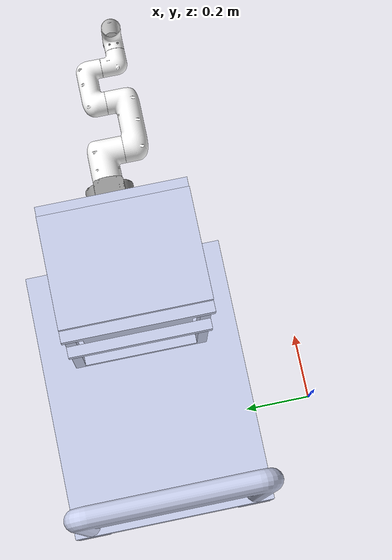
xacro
<?xml version='1.0' encoding='utf-8'?>
<robot xmlns:xacro="http://ros.org/wiki/xacro" name="toilet_trolley_arm_description">

    <xacro:macro name="toilet_trolley_arm_macro">
    <xacro:arg name="ros_namespace" default="toilet_trolley_arm_description"/>

    <!-- load trolley -->
    <xacro:include filename="$(find trolley_urdf)/urdf/trolley_urdf_7.xacro" />

    <!-- load mycobot_pro_320 -->
    <xacro:include filename="$(find mycobot_pro)/urdf/mycobot_robot_macro.xacro" />

    <xacro:mycobot_pro_robot_macro attach_to="box_link" xyz="0.3 0.15 0.15" rpy="0 1.5707 0"/>
    </xacro:macro>

    <xacro:toilet_trolley_arm_macro/>

</robot>

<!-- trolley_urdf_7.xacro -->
<robot
  xmlns:xacro="http://ros.org/wiki/xacro"
  name="trolley_urdf">
  <xacro:macro name="trolley_urdf_macro">
  <link
    name="trolley_base">
    <inertial>
      <origin
        xyz="0.10272 0.49366 0.2"
        rpy="0 0 0" />
      <mass
        value="48" />
      <inertia
        ixx="1.48"
        ixy="2.3463E-16"
        ixz="-9.3648E-33"
        iyy="2.6"
        iyz="1.1449E-17"
        izz="4" />
    </inertial>
    <visual>
      <origin
        xyz="0 0 0"
        rpy="0 0 0" />
      <geometry>
        <mesh
          filename="package://trolley_urdf/meshes/base_link.STL" />
      </geometry>
      <material
        name="">
        <color
          rgba="0.79216 0.81961 0.93333 1" />
      </material>
    </visual>
    <collision>
      <origin
        xyz="0 0 0"
        rpy="0 0 0" />
      <geometry>
        <mesh
          filename="package://trolley_urdf/meshes/base_link.STL" />
      </geometry>
    </collision>
  </link>
  <link
    name="wheel_1">
    <inertial>
      <origin
        xyz="-2.7756E-17 0.05 0"
        rpy="0 0 0" />
      <mass
        value="1.7671" />
      <inertia
        ixx="0.0039577"
        ixy="5.6646E-20"
        ixz="-6.4939E-20"
        iyy="0.0049701"
        iyz="5.8958E-20"
        izz="0.0039577" />
    </inertial>
    <visual>
      <origin
        xyz="0 0 0"
        rpy="0 0 0" />
      <geometry>
        <mesh
          filename="package://trolley_urdf/meshes/wheel_1.STL" />
      </geometry>
      <material
        name="">
        <color
          rgba="0.79216 0.81961 0.93333 1" />
      </material>
    </visual>
    <collision>
      <origin
        xyz="0 0 0"
        rpy="0 0 0" />
      <geometry>
        <mesh
          filename="package://trolley_urdf/meshes/wheel_1.STL" />
      </geometry>
    </collision>
  </link>
  <joint
    name="wheel_1_joint"
    type="continuous">
    <origin
      xyz="-0.22228 0.69366 0.075"
      rpy="0 0 0" />
    <parent
      link="trolley_base" />
    <child
      link="wheel_1" />
    <axis
      xyz="0 1 0" />
  </joint>
  <link
    name="wheel_2">
    <inertial>
      <origin
        xyz="0 0.05 0"
        rpy="0 0 0" />
      <mass
        value="1.7671" />
      <inertia
        ixx="0.0039577"
        ixy="-3.3704E-20"
        ixz="-2.2588E-20"
        iyy="0.0049701"
        iyz="1.0413E-19"
        izz="0.0039577" />
    </inertial>
    <visual>
      <origin
        xyz="0 0 0"
        rpy="0 0 0" />
      <geometry>
        <mesh
          filename="package://trolley_urdf/meshes/wheel_2.STL" />
      </geometry>
      <material
        name="">
        <color
          rgba="0.79216 0.81961 0.93333 1" />
      </material>
    </visual>
    <collision>
      <origin
        xyz="0 0 0"
        rpy="0 0 0" />
      <geometry>
        <mesh
          filename="package://trolley_urdf/meshes/wheel_2.STL" />
      </geometry>
    </collision>
  </link>
  <joint
    name="wheel_2_joint"
    type="continuous">
    <origin
      xyz="-0.22228 0.19366 0.075"
      rpy="0 0 0" />
    <parent
      link="trolley_base" />
    <child
      link="wheel_2" />
    <axis
      xyz="0 1 0" />
  </joint>
  <link
    name="wheel_3">
    <inertial>
      <origin
        xyz="-5.5511E-17 0.05 0"
        rpy="0 0 0" />
      <mass
        value="1.7671" />
      <inertia
        ixx="0.0039577"
        ixy="-2.8731E-19"
        ixz="-2.5129E-19"
        iyy="0.0049701"
        iyz="-6.1343E-20"
        izz="0.0039577" />
    </inertial>
    <visual>
      <origin
        xyz="0 0 0"
        rpy="0 0 0" />
      <geometry>
        <mesh
          filename="package://trolley_urdf/meshes/wheel_3.STL" />
      </geometry>
      <material
        name="">
        <color
          rgba="0.79216 0.81961 0.93333 1" />
      </material>
    </visual>
    <collision>
      <origin
        xyz="0 0 0"
        rpy="0 0 0" />
      <geometry>
        <mesh
          filename="package://trolley_urdf/meshes/wheel_3.STL" />
      </geometry>
    </collision>
  </link>
  <joint
    name="wheel_3_joint"
    type="continuous">
    <origin
      xyz="0.42772 0.19366 0.075"
      rpy="0 0 0" />
    <parent
      link="trolley_base" />
    <child
      link="wheel_3" />
    <axis
      xyz="0 1 0" />
  </joint>
  <link
    name="wheel_4">
    <inertial>
      <origin
        xyz="0 0.0500000000000002 0"
        rpy="0 0 0" />
      <mass
        value="1.76714586764426" />
      <inertia
        ixx="0.00395767043274496"
        ixy="5.66458023401988E-20"
        ixz="-1.97641021026003E-20"
        iyy="0.00497009775274948"
        iyz="8.15456627067693E-20"
        izz="0.00395767043274496" />
    </inertial>
    <visual>
      <origin
        xyz="0 0 0"
        rpy="0 0 0" />
      <geometry>
        <mesh
          filename="package://trolley_urdf/meshes/wheel_4.STL" />
      </geometry>
      <material
        name="">
        <color
          rgba="0.792156862745098 0.819607843137255 0.933333333333333 1" />
      </material>
    </visual>
    <collision>
      <origin
        xyz="0 0 0"
        rpy="0 0 0" />
      <geometry>
        <mesh
          filename="package://trolley_urdf/meshes/wheel_4.STL" />
      </geometry>
    </collision>
  </link>
  <joint
    name="wheel_4_joint"
    type="continuous">
    <origin
      xyz="0.42772 0.69366 0.075"
      rpy="0 0 0" />
    <parent
      link="trolley_base" />
    <child
      link="wheel_4" />
    <axis
      xyz="0 1 0" />
  </joint>
  <link
    name="handle_link">
    <inertial>
      <origin
        xyz="0 -0.19372 -0.17127"
        rpy="0 0 0" />
      <mass
        value="5.2993" />
      <inertia
        ixx="0.55873"
        ixy="3.1029E-17"
        ixz="3.1343E-19"
        iyy="0.2863"
        iyz="-1.0271E-15"
        izz="0.27482" />
    </inertial>
    <visual>
      <origin
        xyz="0 0 0"
        rpy="0 0 0" />
      <geometry>
        <mesh
          filename="package://trolley_urdf/meshes/handle_link.STL" />
      </geometry>
      <material
        name="">
        <color
          rgba="0.79216 0.81961 0.93333 1" />
      </material>
    </visual>
    <collision>
      <origin
        xyz="0 0 0"
        rpy="0 0 0" />
      <geometry>
        <mesh
          filename="package://trolley_urdf/meshes/handle_link.STL" />
      </geometry>
    </collision>
  </link>
  <joint
    name="handle_joint"
    type="fixed">
    <origin
      xyz="-0.26728 0.68738 0.86"
      rpy="0 0 0" />
    <parent
      link="trolley_base" />
    <child
      link="handle_link" />
    <axis
      xyz="0 0 0" />
  </joint>
  <link
    name="frame_link">
    <inertial>
      <origin
        xyz="0.01 -1.1102E-16 0.36"
        rpy="0 0 0" />
      <mass
        value="7.248" />
      <inertia
        ixx="0.83046"
        ixy="-5.2098E-17"
        ixz="-2.3037E-16"
        iyy="0.76329"
        iyz="-4.8663E-17"
        izz="0.22876" />
    </inertial>
    <visual>
      <origin
        xyz="0 0 0"
        rpy="0 0 0" />
      <geometry>
        <mesh
          filename="package://trolley_urdf/meshes/frame_link.STL" />
      </geometry>
      <material
        name="">
        <color
          rgba="0.79216 0.81961 0.93333 1" />
      </material>
    </visual>
    <collision>
      <origin
        xyz="0 0 0"
        rpy="0 0 0" />
      <geometry>
        <mesh
          filename="package://trolley_urdf/meshes/frame_link.STL" />
      </geometry>
    </collision>
  </link>
  <joint
    name="frame_joint"
    type="fixed">
    <origin
      xyz="0.34272 0.49366 0.25"
      rpy="0 0 0" />
    <parent
      link="trolley_base" />
    <child
      link="frame_link" />
    <axis
      xyz="0 0 0" />
  </joint>
  <link
    name="box_link">
    <inertial>
      <origin
        xyz="0.15 0.15 0.15"
        rpy="0 0 0" />
      <mass
        value="28.44" />
      <inertia
        ixx="0.450551999999999"
        ixy="-2.76726883595424E-17"
        ixz="-2.54109884176291E-17"
        iyy="0.470664"
        iyz="-1.46071550037944E-17"
        izz="0.463512" />
    </inertial>
    <visual>
      <origin
        xyz="0 0 0"
        rpy="0 0 0" />
      <geometry>
        <mesh
          filename="package://trolley_urdf/meshes/box_link.STL" />
      </geometry>
      <material
        name="">
        <color
          rgba="0.792156862745098 0.819607843137255 0.933333333333333 1" />
      </material>
    </visual>
    <collision>
      <origin
        xyz="0 0 0"
        rpy="0 0 0" />
      <geometry>
        <mesh
          filename="package://trolley_urdf/meshes/box_link.STL" />
      </geometry>
    </collision>
  </link>
  <joint
    name="box_joint"
    type="prismatic">
    <origin
      xyz="-0.14 -0.15 0.4028"
      rpy="0 0 0" />
    <parent
      link="frame_link" />
    <child
      link="box_link" />
    <axis
      xyz="0 0 1" />
    <limit
      lower="-0.35"
      upper="0"
      effort="1000"
      velocity="0" />
  </joint>
  </xacro:macro>
  <xacro:trolley_urdf_macro/>
</robot>

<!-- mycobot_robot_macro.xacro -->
<robot xmlns:xacro="http://ros.org/wiki/xacro" name="mycobot_pro_robot" >
  <xacro:macro name="mycobot_pro_robot_macro" params="prefix:='' namespace:='xarm' limited:='false' effort_control:='false'
    velocity_control:='false' attach_to:='world' xyz:='0 0 0' rpy:='0 0 0' load_gazebo_plugin:='true' ">

    <!-- include mycobot relative macros: -->
    <xacro:include filename="$(find mycobot_pro)/urdf/320_urdf/mycobot_pro_320.xacro" />

    <!-- add one world link if no 'attach_to' specified  -->
    <xacro:if value="${attach_to == 'world'}">
      <link name="world" />
    </xacro:if>

    <joint name="world_joint" type="fixed">
      <parent link="${attach_to}" />
      <child link = "${prefix}arm_base" />
      <origin xyz="${xyz}" rpy="${rpy}" />
    </joint>

  </xacro:macro>
</robot>

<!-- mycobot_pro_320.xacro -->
<robot  xmlns:xacro="http://www.ros.org/wiki/xacro" name="mycobot_pro_robot" >

<xacro:property name="width" value=".2" />
  <link name="arm_base">
    <visual>
      <geometry>
       <mesh filename="package://mycobot_pro/urdf/320_urdf/base.dae"/>
      </geometry>
    <origin xyz = "0 0 0 " rpy = " 0 0 0"/>
    </visual>
    <collision>
      <origin xyz = "0 0 0.05 " rpy = " 0 0 0"/>
      <geometry>
        <cylinder length="0.102" radius="0.0725"/>
      </geometry>
    </collision>
  </link>

  <link name="link1">
    <visual>
      <geometry>
       <mesh filename="package://mycobot_pro/urdf/320_urdf/link1.dae"/>
      </geometry>
      <origin xyz = "0 0 0 " rpy = " 0 0 0"/>
    </visual>
    <collision>
      <origin xyz = "0 0 -0.02 " rpy = " 0 0 0"/>
      <geometry>
        <cylinder length="0.106" radius="0.043"/>
      </geometry>
    </collision>
  </link>

  <link name="link2">
    <visual>
      <geometry>
       <mesh filename="package://mycobot_pro/urdf/320_urdf/link2.dae"/>
      </geometry>
      <origin xyz = "0 0 0.0587 " rpy = " 0 0 3.1415926"/>
    </visual>
    <collision>
     <origin xyz = "0.04 0 0.095 " rpy = " 0 -1.5708 0"/>
      <geometry>
        <cylinder length="0.21" radius="0.036"/>
      </geometry>
    </collision>
  </link>

  <link name="link3">
    <visual>
      <geometry>
       <mesh filename="package://mycobot_pro/urdf/320_urdf/link3.dae"/>
      </geometry>
      <origin xyz = "0 0 0.038 " rpy = " 0 0 3.1415926"/>
    </visual>
    <collision>
      <origin xyz = "0.034 0 0 " rpy = " 0 -1.5708 0"/>
      <geometry>
        <cylinder length="0.119" radius="0.0305"/>
      </geometry>
    </collision>
  </link>

<link name="link4">
    <visual>
      <geometry>
       <mesh filename="package://mycobot_pro/urdf/320_urdf/link4.dae"/>
      </geometry>
      <origin xyz = "0 -0.001 0 " rpy = " 0 0 0"/>
    </visual>
    <collision>
      <origin xyz = "0.0 -0.012 0 " rpy = " 0 -1.5708 1.5708"/>
      <geometry>
        <cylinder length="0.085" radius="0.029"/>
      </geometry>
    </collision>
  </link>

  <link name="link5">
    <visual>
      <geometry>
       <mesh filename="package://mycobot_pro/urdf/320_urdf/link5.dae"/>
      </geometry>
      <origin xyz = "0 0.002  0 " rpy = " 0  0 3.1415926"/>
    </visual>
    <collision>
      <origin xyz = "0 -0.01 0 " rpy = " 1.5708 1.5708 0"/>
      <geometry>
        <cylinder length="0.0849" radius="0.029"/>
      </geometry>
    </collision>
  </link>

  <link name="link6">
    <visual>
      <geometry>
        <cylinder length="0.02" radius="0.026"/>
      </geometry>
      <material name = "grey">
        <color rgba = "0.5 0.5 0.5 1"/>
      </material>
    <origin xyz = "0 0 -0.01 " rpy = " 0 0 0"/>
    </visual>
       <collision>
      <origin xyz = "0.0 0 -0.01 " rpy = " 0 0 0"/>
      <geometry>
        <cylinder length="0.0225" radius="0.026"/>
      </geometry>
    </collision>
  </link>

  <joint name="joint2_to_joint1" type="revolute">
    <axis xyz="0 0 1"/>
    <limit effort = "1000.0" lower = "-3.14" upper = "3.14159" velocity = "0"/>
    <parent link="arm_base"/>
    <child link="link1"/>
    <origin xyz= "0 0 0.17846" rpy = "0 0 0"/>
  </joint>

  <joint name="joint3_to_joint2" type="revolute">
    <axis xyz="0 0 1"/>
    <limit effort = "1000.0" lower = "-3.14" upper = "3.14159" velocity = "0"/>
    <parent link="link1"/>
    <child link="link2"/>
    <origin xyz= "0 0  0" rpy = "0 -1.57080  1.57080"/>
  </joint>

  <joint name="joint4_to_joint3" type="revolute">
    <axis xyz=" 0 0 1"/>
    <limit effort = "1000.0" lower = "-3.14" upper = "3.14159" velocity = "0"/>
    <parent link="link2"/>
    <child link="link3"/>
    <origin xyz= "0.13635 0 0   " rpy = "0 0 0"/>
  </joint>

  <joint name="joint5_to_joint4" type="revolute">
    <axis xyz=" 0 0 1"/>
    <limit effort = "1000.0" lower = "-3.14" upper = "3.14159" velocity = "0"/>
    <parent link="link3"/>
    <child link="link4"/>
    <origin xyz= "0.1 0  0.090" rpy = "0 0 1.57080"/>
  </joint>

  <joint name="joint6_to_joint5" type="revolute">
    <axis xyz="0 0 1"/>
    <limit effort = "1000.0" lower = "-3.14" upper = "3.14159" velocity = "0"/>
    <parent link="link4"/>
    <child link="link5"/>
    <origin xyz= "0 -0.08515 0" rpy = "1.57080 -1.57080 0"/>
  </joint>

  <joint name="joint6output_to_joint6" type="revolute">
    <axis xyz="0 0 1"/>
    <limit effort = "1000.0" lower = "-3.14" upper = "3.14159" velocity = "0"/>
    <parent link="link5"/>
    <child link="link6"/>
    <origin xyz= "0 0.06 0" rpy = "-1.57080 0 0 "/>
  </joint>

</robot>
